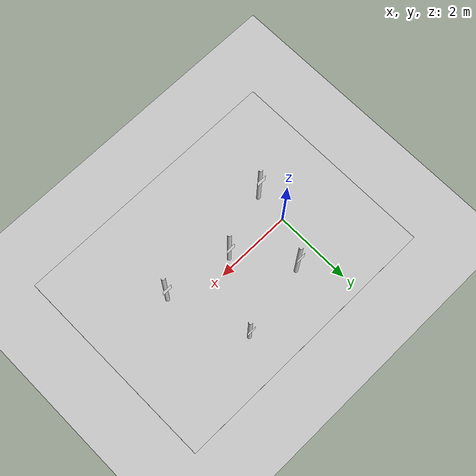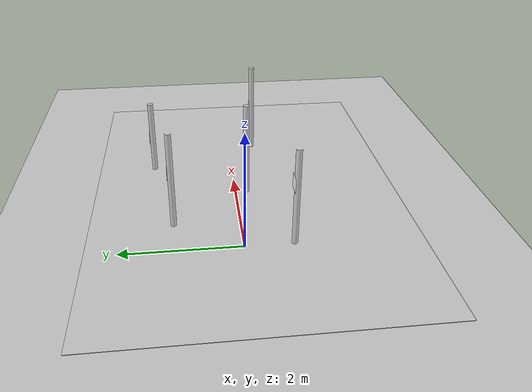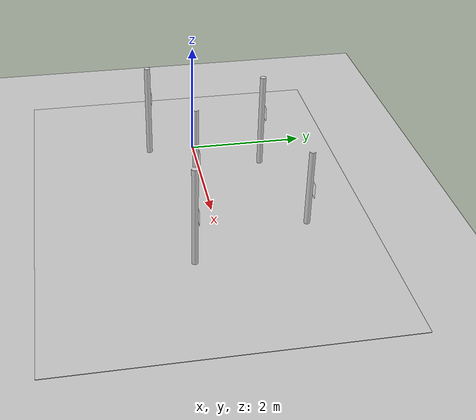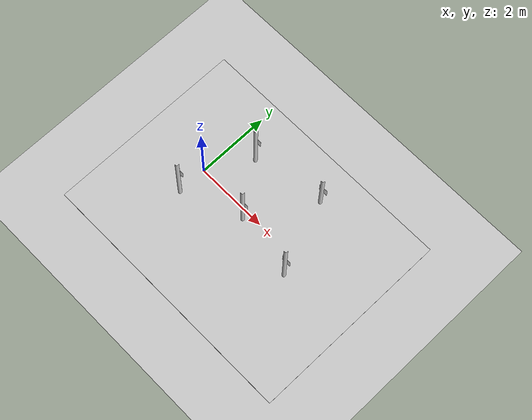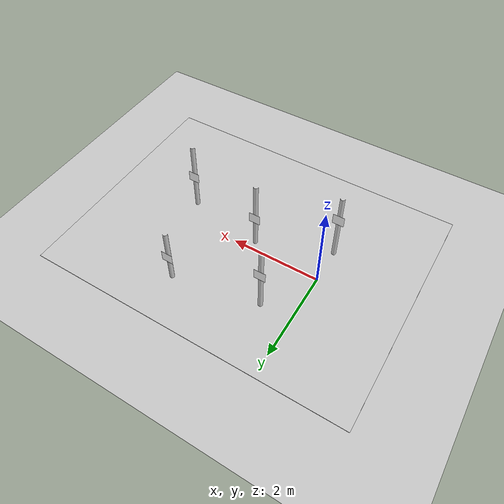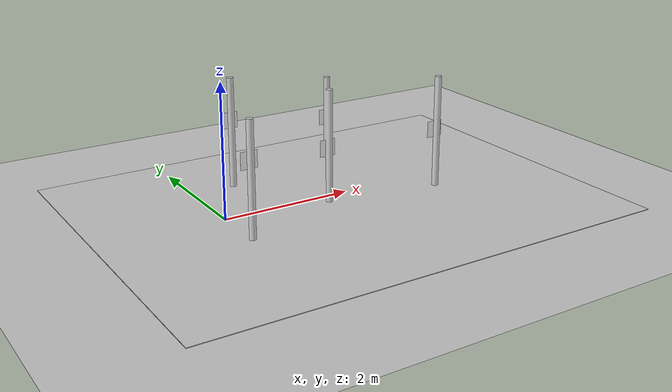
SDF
<?xml version="1.0" ?>
<sdf version="1.9">
  <world name="world_simple_world">
    <physics type="ode">
      <max_step_size>0.002</max_step_size>
      <real_time_factor>1.0</real_time_factor>
      <real_time_update_rate>1000</real_time_update_rate>
    </physics>
    <plugin name='gz::sim::systems::Physics' filename='libgz-sim-physics-system.so'/>
    <plugin name='gz::sim::systems::UserCommands' filename='libgz-sim-user-commands-system.so'/>
    <plugin name='gz::sim::systems::SceneBroadcaster' filename='libgz-sim-scene-broadcaster-system.so'/>
    <plugin name='gz::sim::systems::Contact' filename='libgz-sim-contact-system.so'/>
    <plugin name='gz::sim::systems::Imu' filename='libgz-sim-imu-system.so'/>
    <plugin name='gz::sim::systems::AirPressure' filename='libgz-sim-air-pressure-system.so'/>
    <plugin name='gz::sim::systems::Sensors' filename='libgz-sim-sensors-system.so'>
      <render_engine>ogre2</render_engine>
    </plugin>
    <gravity>0 0 -9.80665</gravity>
    <magnetic_field>6e-06 2.3e-05 -4.2e-05</magnetic_field>
    <atmosphere type='adiabatic'/>
    <scene>
      <grid>false</grid>
      <ambient>0.4 0.4 0.4 1</ambient>
      <background>0.7 0.7 0.7 1</background>
      <shadows>false</shadows>
    </scene>
    <model name="ground_plane">
      <pose>60 60 0 0 0 0</pose>
      <static>true</static>
      <link name="link">
        <collision name="collision">
          <geometry>
            <plane>
              <normal>0 0 1</normal>
              <size>150 150</size>
            </plane>
          </geometry>
        </collision>
        <visual name="visual">
          <geometry>
            <plane>
              <normal>0 0 1</normal>
              <size>150 150</size>
            </plane>
          </geometry>
          <material>
            <ambient>0.8 0.8 0.8 1</ambient>
            <diffuse>0.8 0.8 0.8 1</diffuse>
            <specular>0.8 0.8 0.8 1</specular>
          </material>
        </visual>
      </link>
    </model>

    <include>
      <pose>0 0 0 0 0 0</pose>
      <uri>model://world_simple</uri>
    </include>
    <include>
        <pose>0.011 -0.751 1.116 -1.571 -0.0 0.0</pose>
        <uri>model://aruco_markers/aruco_marker_1</uri>
        </include>
    <include>
        <pose>1.594 -0.146 0.816 -1.571 -0.0 0.0</pose>
        <uri>model://aruco_markers/aruco_marker_2</uri>
        </include>
    <include>
        <pose>0.685 1.167 1.035 -1.571 -0.0 0.0</pose>
        <uri>model://aruco_markers/aruco_marker_3</uri>
        </include>
    <include>
        <pose>2.595 1.526 0.683 -1.571 -0.0 0.0</pose>
        <uri>model://aruco_markers/aruco_marker_4</uri>
        </include>
    <include>
        <pose>3.309 -0.435 0.891 -1.571 -0.0 0.0</pose>
        <uri>model://aruco_markers/aruco_marker_5</uri>
        </include>

    <light type="directional" name="sun">
      <cast_shadows>false</cast_shadows>
      <pose>0 0 100 0 0 0</pose>
      <diffuse>0.8 0.8 0.8 1</diffuse>
      <specular>0.2 0.2 0.2 1</specular>
      <attenuation>
        <range>1000</range>
        <constant>0.9</constant>
        <linear>0.01</linear>
        <quadratic>0.001</quadratic>
      </attenuation>
      <direction>-0.5 0.1 -0.9</direction>
    </light>
  </world>
</sdf>

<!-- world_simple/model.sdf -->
<sdf version="1.9">
  <model name="world_simple">
    <static>true</static>
    <link name="link">
      <collision name="collision">
        <geometry>
          <mesh>
            <uri>model://world_simple/meshes/world_simple.stl</uri>
          </mesh>
        </geometry>
      </collision>
      <visual name="visual">
        <geometry>
          <mesh>
            <uri>model://world_simple/meshes/world_simple.stl</uri>
          </mesh>
        </geometry>
        <material>
            <ambient>0.8 0.8 0.8 1</ambient>
            <diffuse>0.8 0.8 0.8 1</diffuse>
            <specular>0.8 0.8 0.8 1</specular>
        </material>
      </visual>
    </link>
  </model>
</sdf>

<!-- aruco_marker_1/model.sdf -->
<sdf version="1.9">
  <model name="aruco_marker_1">
    <static>true</static>
    <link name="link">
      <!-- ArUco Marker 0 -->
      <visual name="aruco_marker_1_vis">
        <pose>0 0 0 0 0 0</pose> <!-- Position: x, y, z; Rotation: roll, pitch, yaw -->
        <geometry>
          <plane>
            <normal>0 0 1</normal> <!-- Normal vector for the plane -->
            <size>0.25 0.25</size>   <!-- Size of the marker (e.g., 10cm x 10cm) -->
          </plane>
        </geometry>
        <material>
          <pbr>
            <metal>
              <albedo_map>marker_0001.png</albedo_map>
              <metalness>0.0</metalness>
            </metal>
          </pbr>
          <ambient>1 1 1 1</ambient>
          <diffuse>1 1 1 1</diffuse>
          <specular>0 0 0 1</specular>
        </material>
      </visual>
    </link>
  </model>
</sdf>

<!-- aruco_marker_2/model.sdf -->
<sdf version="1.9">
  <model name="aruco_marker_2">
    <static>true</static>
    <link name="link">
      <!-- ArUco Marker 0 -->
      <visual name="aruco_marker_2_vis">
        <pose>0 0 0 0 0 0</pose> <!-- Position: x, y, z; Rotation: roll, pitch, yaw -->
        <geometry>
          <plane>
            <normal>0 0 1</normal> <!-- Normal vector for the plane -->
            <size>0.25 0.25</size>   <!-- Size of the marker (e.g., 10cm x 10cm) -->
          </plane>
        </geometry>
        <material>
          <pbr>
            <metal>
              <albedo_map>marker_0002.png</albedo_map>
              <metalness>0.0</metalness>
            </metal>
          </pbr>
          <ambient>1 1 1 1</ambient>
          <diffuse>1 1 1 1</diffuse>
          <specular>0 0 0 1</specular>
        </material>
      </visual>
    </link>
  </model>
</sdf>

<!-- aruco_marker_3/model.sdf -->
<sdf version="1.9">
  <model name="aruco_marker_3">
    <static>true</static>
    <link name="link">
      <!-- ArUco Marker 0 -->
      <visual name="aruco_marker_3_vis">
        <pose>0 0 0 0 0 0</pose> <!-- Position: x, y, z; Rotation: roll, pitch, yaw -->
        <geometry>
          <plane>
            <normal>0 0 1</normal> <!-- Normal vector for the plane -->
            <size>0.25 0.25</size>   <!-- Size of the marker (e.g., 10cm x 10cm) -->
          </plane>
        </geometry>
        <material>
          <pbr>
            <metal>
              <albedo_map>marker_0003.png</albedo_map>
              <metalness>0.0</metalness>
            </metal>
          </pbr>
          <ambient>1 1 1 1</ambient>
          <diffuse>1 1 1 1</diffuse>
          <specular>0 0 0 1</specular>
        </material>
      </visual>
    </link>
  </model>
</sdf>

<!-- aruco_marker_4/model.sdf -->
<sdf version="1.9">
  <model name="aruco_marker_4">
    <static>true</static>
    <link name="link">
      <!-- ArUco Marker 0 -->
      <visual name="aruco_marker_4_vis">
        <pose>0 0 0 0 0 0</pose> <!-- Position: x, y, z; Rotation: roll, pitch, yaw -->
        <geometry>
          <plane>
            <normal>0 0 1</normal> <!-- Normal vector for the plane -->
            <size>0.25 0.25</size>   <!-- Size of the marker (e.g., 10cm x 10cm) -->
          </plane>
        </geometry>
        <material>
          <pbr>
            <metal>
              <albedo_map>marker_0004.png</albedo_map>
              <metalness>0.0</metalness>
            </metal>
          </pbr>
          <ambient>1 1 1 1</ambient>
          <diffuse>1 1 1 1</diffuse>
          <specular>0 0 0 1</specular>
        </material>
      </visual>
    </link>
  </model>
</sdf>

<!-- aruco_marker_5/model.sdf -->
<sdf version="1.9">
  <model name="aruco_marker_5">
    <static>true</static>
    <link name="link">
      <!-- ArUco Marker 0 -->
      <visual name="aruco_marker_5_vis">
        <pose>0 0 0 0 0 0</pose> <!-- Position: x, y, z; Rotation: roll, pitch, yaw -->
        <geometry>
          <plane>
            <normal>0 0 1</normal> <!-- Normal vector for the plane -->
            <size>0.25 0.25</size>   <!-- Size of the marker -->
          </plane>
        </geometry>
        <material>
          <pbr>
            <metal>
              <albedo_map>marker_0005.png</albedo_map>
              <metalness>0.0</metalness>
            </metal>
          </pbr>
          <ambient>1 1 1 1</ambient>
          <diffuse>1 1 1 1</diffuse>
          <specular>0 0 0 1</specular>
        </material>
      </visual>
    </link>
  </model>
</sdf>
